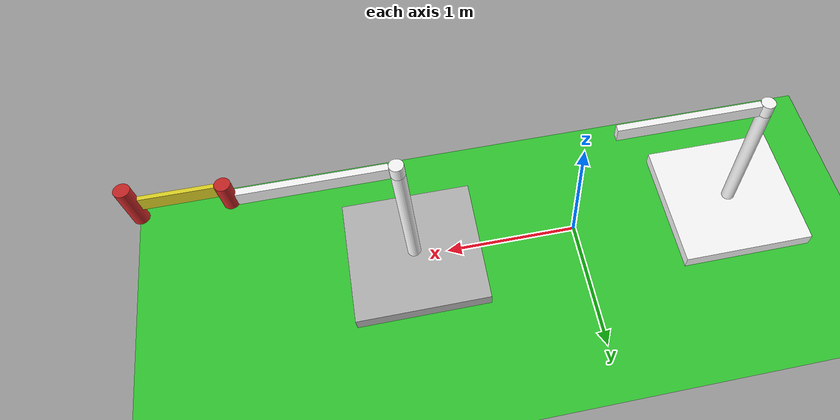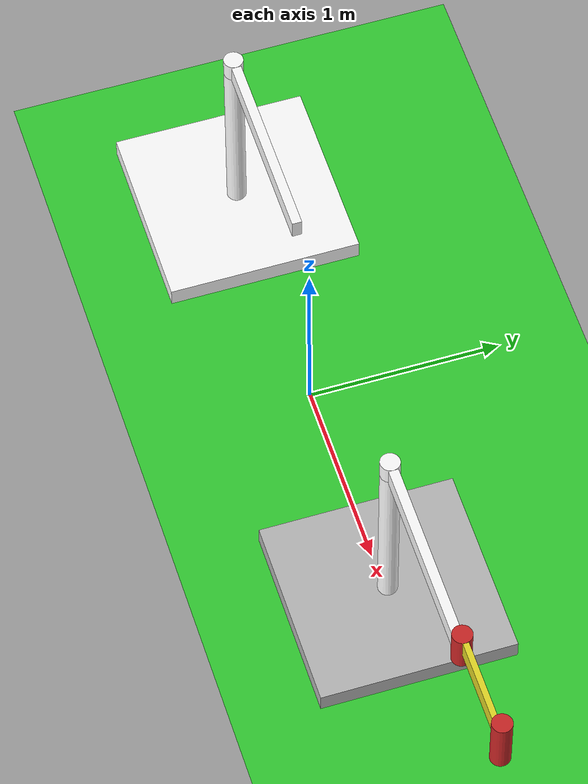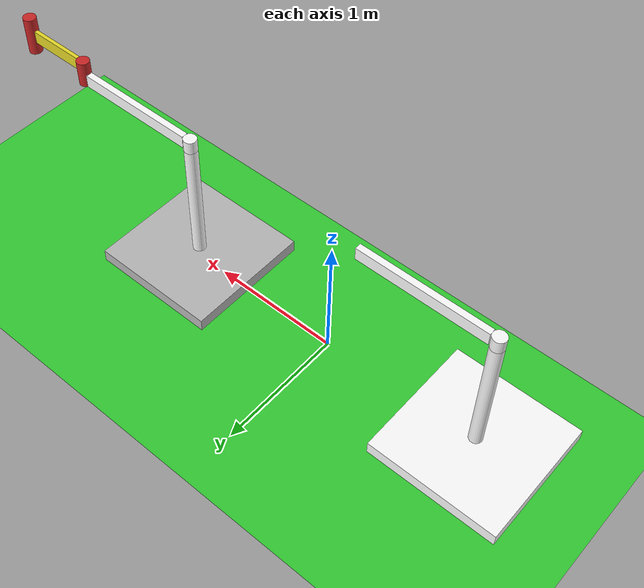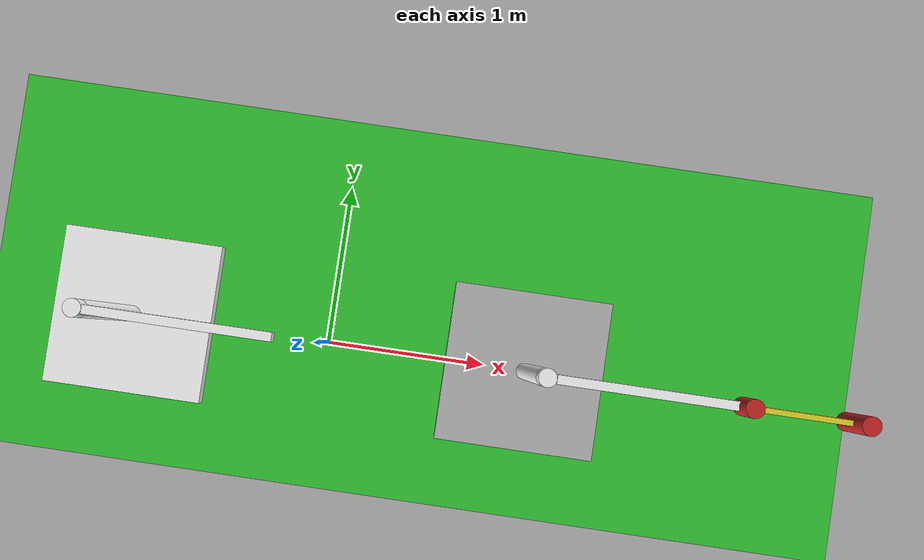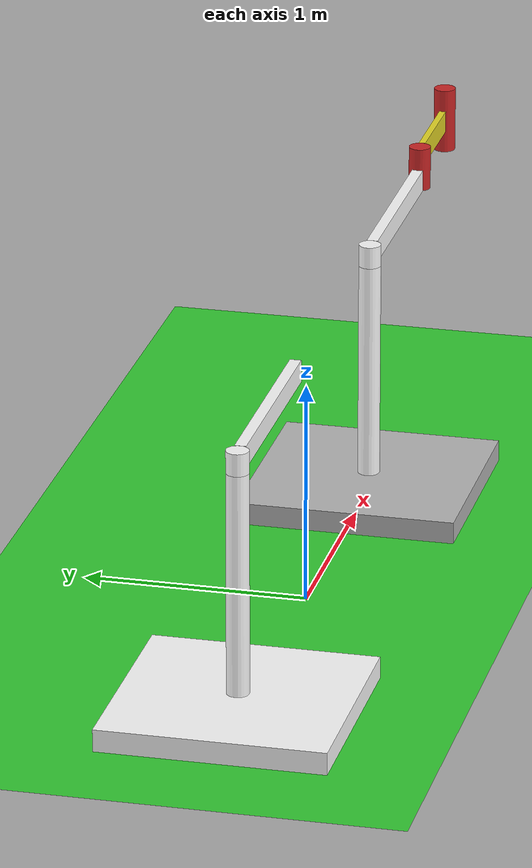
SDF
<?xml version="1.0"?>
<sdf version="1.5">
  <world name="dxsim">
    <physics name='1ms' type='unused'>
      <max_step_size>0.002000</max_step_size>
      <real_time_factor>1.000000</real_time_factor>
      <real_time_update_rate>500.000000</real_time_update_rate>
    </physics>

    <light type="directional" name="sun">
      <cast_shadows>true</cast_shadows>
      <pose>0 0 10 0 0 0</pose>
      <diffuse>0.8 0.8 0.8 1</diffuse>
      <specular>0.2 0.2 0.2 1</specular>
      <attenuation>
        <range>1000</range>
        <constant>0.9</constant>
        <linear>0.01</linear>
        <quadratic>0.001</quadratic>
      </attenuation>
      <direction>-0.5 0.1 -0.9</direction>
    </light>

    <model name="ground_plane">
      <static>true</static>
      <link name="link">
        <collision name="collision">
          <geometry>
            <plane>
              <normal>0 0 1.0</normal>
              <size>100 100</size>
            </plane>
          </geometry>
        </collision>
        <visual name="visual">
          <geometry>
            <plane>
              <normal>0 0 1.0</normal>
              <size>100 100</size>
            </plane>
          </geometry>
          <material>
            <ambient>0.2 0.8 0.2 1</ambient>
            <diffuse>0.2 0.8 0.2 1</diffuse>
            <specular>0.2 0.8 0.2 1</specular>
          </material>
        </visual>
      </link>
    </model>

    <include>
      <uri>model://dxsim-one</uri>
      <name>dxsim-one</name>
      <pose>-1.25 0 0 0 0 0</pose>
    </include>

    <include>
      <uri>model://dxsim-two</uri>
      <name>dxsim-two</name>
      <pose>1.25 0 0 0 0 0</pose>
    </include>
  </world>
</sdf>

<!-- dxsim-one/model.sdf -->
<sdf version="1.5">
  <model name="dxsim-one">
    <link name="arm_base">
      <inertial>
        <pose>0 0 0.00099 0 0 0</pose>
        <inertia>
          <ixx>1.11</ixx>
          <ixy>0</ixy>
          <ixz>0</ixz>
          <iyy>100.11</iyy>
          <iyz>0</iyz>
          <izz>1.01</izz>
        </inertia>
        <mass>101.0</mass>
      </inertial>
      <collision name="arm_base_geom">
        <pose>0 0 0.05 0 0 0</pose>
        <geometry>
          <box>
            <size>1.0 1.0 0.1</size>
          </box>
        </geometry>
      </collision>
      <visual name="arm_base_geom_visual">
        <pose>0 0 0.05 0 0 0</pose>
        <geometry>
          <box>
            <size>1.0 1.0 0.1</size>
          </box>
        </geometry>
        <material>
          <ambient>0.2 0.2 0.8 1</ambient>
          <diffuse>1.0 1.0 1.0 1</diffuse>
        </material>
      </visual>
      <collision name="arm_base_geom_arm_trunk">
        <pose>0 0 0.6 0 0 0</pose>
        <geometry>
          <cylinder>
            <radius>0.05</radius>
            <length>1.0</length>
          </cylinder>
        </geometry>
      </collision>
      <visual name="arm_base_geom_arm_trunk_visual">
        <pose>0 0 0.6 0 0 0</pose>
        <geometry>
          <cylinder>
            <radius>0.05</radius>
            <length>1.0</length>
          </cylinder>
        </geometry>
        <material>
          <ambient>0.8 0.2 0.2 1</ambient>
          <diffuse>1.0 1.0 1.0 1</diffuse>
        </material>
      </visual>
    </link>
    <link name="arm_shoulder_pan">
      <pose>0 0 1.1 0 0 0</pose>
      <inertial>
        <pose>0.045455 0 0 0 0 0</pose>
        <inertia>
          <ixx>0.011</ixx>
          <ixy>0</ixy>
          <ixz>0</ixz>
          <iyy>0.0225</iyy>
          <iyz>0</iyz>
          <izz>0.0135</izz>
        </inertia>
        <mass>1.1</mass>
      </inertial>
      <collision name="arm_shoulder_pan_geom">
        <pose>0 0 0.05 0 0 0</pose>
        <geometry>
          <cylinder>
            <radius>0.05</radius>
            <length>0.1</length>
          </cylinder>
        </geometry>
      </collision>
      <visual name="arm_shoulder_pan_geom_visual">
        <pose>0 0 0.05 0 0 0</pose>
        <geometry>
          <cylinder>
            <radius>0.05</radius>
            <length>0.1</length>
          </cylinder>
        </geometry>
        <material>
          <ambient>0.8 0.8 0.2 1</ambient>
          <diffuse>1.0 1.0 1.0 1</diffuse>
        </material>
      </visual>
      <collision name="arm_shoulder_pan_geom_arm_shoulder">
        <pose>0.55 0 0.05 0 0 0</pose>
        <geometry>
          <box>
            <size>1.0 0.05 0.1</size>
          </box>
        </geometry>
      </collision>
      <visual name="arm_shoulder_pan_geom_arm_shoulder_visual">
        <pose>0.55 0 0.05 0 0 0</pose>
        <geometry>
          <box>
            <size>1.0 0.05 0.1</size>
          </box>
        </geometry>
        <material>
          <ambient>0.8 0.8 0.2 1</ambient>
          <diffuse>1.0 1.0 1.0 1</diffuse>
        </material>
      </visual>
    </link>

    <joint name="arm_shoulder_pan_joint" type="revolute">
      <parent>arm_base</parent>
      <child>arm_shoulder_pan</child>
      <axis>
        <dynamics>
          <damping>1.000000</damping>
          <friction>0.000000</friction>
        </dynamics>
        <xyz>0 0 1</xyz>
        <use_parent_model_frame>true</use_parent_model_frame>
      </axis>
    </joint>

    <joint name="arm_base_joint" type="fixed">
      <parent>world</parent>
      <child>arm_base</child>
    </joint>

    <plugin name="dxsim" filename="dxsim-gazebo.so">
      <pty>/tmp/pty-dxsim-one</pty>
      <period>1e-3</period>
      <motors>
        <motor>
          <joint spin="ccw">arm_shoulder_pan_joint</joint>
          <eeprom>/tmp/dxsim-one-id1</eeprom>
          <model>MX64T</model>
          <p0>0.0</p0>
          <v0>0.0</v0>
          <id>1</id>
          <noise>0</noise>
          <debug>0</debug>
        </motor>
      </motors>
    </plugin>
  </model>
</sdf>

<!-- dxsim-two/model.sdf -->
<sdf version="1.5">
  <model name="dxsim-two">
    <link name="arm_base">
      <inertial>
        <pose>0 0 0.00099 0 0 0</pose>
        <inertia>
          <ixx>1.11</ixx>
          <ixy>0</ixy>
          <ixz>0</ixz>
          <iyy>100.11</iyy>
          <iyz>0</iyz>
          <izz>1.01</izz>
        </inertia>
        <mass>101.0</mass>
      </inertial>
      <collision name="arm_base_geom">
        <pose>0 0 0.05 0 0 0</pose>
        <geometry>
          <box>
            <size>1.0 1.0 0.1</size>
          </box>
        </geometry>
      </collision>
      <visual name="arm_base_geom_visual">
        <pose>0 0 0.05 0 0 0</pose>
        <geometry>
          <box>
            <size>1.0 1.0 0.1</size>
          </box>
        </geometry>
        <material>
          <script>
            <ambient>0.2 0.2 0.8 1</ambient>
            <diffuse>1.0 1.0 1.0 1</diffuse>
          </script>
        </material>
      </visual>
      <collision name="arm_base_geom_arm_trunk">
        <pose>0 0 0.6 0 0 0</pose>
        <geometry>
          <cylinder>
            <radius>0.05</radius>
            <length>1.0</length>
          </cylinder>
        </geometry>
      </collision>
      <visual name="arm_base_geom_arm_trunk_visual">
        <pose>0 0 0.6 0 0 0</pose>
        <geometry>
          <cylinder>
            <radius>0.05</radius>
            <length>1.0</length>
          </cylinder>
        </geometry>
        <material>
          <ambient>0.8 0.2 0.2 1</ambient>
          <diffuse>1.0 1.0 1.0 1</diffuse>
        </material>
      </visual>
    </link>
    <link name="arm_shoulder_pan">
      <pose>0 0 1.1 0 0 0</pose>
      <inertial>
        <pose>0.045455 0 0 0 0 0</pose>
        <inertia>
          <ixx>0.011</ixx>
          <ixy>0</ixy>
          <ixz>0</ixz>
          <iyy>0.0225</iyy>
          <iyz>0</iyz>
          <izz>0.0135</izz>
        </inertia>
        <mass>1.1</mass>
      </inertial>
      <collision name="arm_shoulder_pan_geom">
        <pose>0 0 0.05 0 0 0</pose>
        <geometry>
          <cylinder>
            <radius>0.05</radius>
            <length>0.1</length>
          </cylinder>
        </geometry>
      </collision>
      <visual name="arm_shoulder_pan_geom_visual">
        <pose>0 0 0.05 0 0 0</pose>
        <geometry>
          <cylinder>
            <radius>0.05</radius>
            <length>0.1</length>
          </cylinder>
        </geometry>
        <material>
          <ambient>0.8 0.8 0.2 1</ambient>
          <diffuse>1.0 1.0 1.0 1</diffuse>
        </material>
      </visual>
      <collision name="arm_shoulder_pan_geom_arm_shoulder">
        <pose>0.55 0 0.05 0 0 0</pose>
        <geometry>
          <box>
            <size>1.0 0.05 0.1</size>
          </box>
        </geometry>
      </collision>
      <visual name="arm_shoulder_pan_geom_arm_shoulder_visual">
        <pose>0.55 0 0.05 0 0 0</pose>
        <geometry>
          <box>
            <size>1.0 0.05 0.1</size>
          </box>
        </geometry>
        <material>
          <ambient>0.8 0.8 0.2 1</ambient>
          <diffuse>1.0 1.0 1.0 1</diffuse>
        </material>
      </visual>
    </link>
    <link name="arm_elbow_pan">
      <pose>1.05 0 1.1 0 0 0</pose>
      <inertial>
        <pose>0.0875 0 0.083333 0 0 0</pose>
        <inertia>
          <ixx>0.031</ixx>
          <ixy>0</ixy>
          <ixz>0.005</ixz>
          <iyy>0.07275</iyy>
          <iyz>0</iyz>
          <izz>0.04475</izz>
        </inertia>
        <mass>1.2</mass>
      </inertial>
      <collision name="arm_elbow_pan_geom">
        <pose>0 0 0.1 0 0 0</pose>
        <geometry>
          <cylinder>
            <radius>0.05</radius>
            <length>0.2</length>
          </cylinder>
        </geometry>
      </collision>
      <visual name="arm_elbow_pan_geom_visual">
        <pose>0 0 0.1 0 0 0</pose>
        <geometry>
          <cylinder>
            <radius>0.05</radius>
            <length>0.2</length>
          </cylinder>
        </geometry>
        <material>
          <script>
            <uri>file://media/materials/scripts/gazebo.material</uri>
            <name>Gazebo/Red</name>
          </script>
        </material>
      </visual>
      <collision name="arm_elbow_pan_geom_arm_elbow">
        <pose>0.3 0 0.15 0 0 0</pose>
        <geometry>
          <box>
            <size>0.5 0.03 0.1</size>
          </box>
        </geometry>
      </collision>
      <visual name="arm_elbow_pan_geom_arm_elbow_visual">
        <pose>0.3 0 0.15 0 0 0</pose>
        <geometry>
          <box>
            <size>0.5 0.03 0.1</size>
          </box>
        </geometry>
        <material>
          <script>
            <uri>file://media/materials/scripts/gazebo.material</uri>
            <name>Gazebo/Yellow</name>
          </script>
        </material>
      </visual>
      <collision name="arm_elbow_pan_geom_arm_wrist">
        <pose>0.55 0 0.15 0 0 0</pose>
        <geometry>
          <cylinder>
            <radius>0.05</radius>
            <length>0.3</length>
          </cylinder>
        </geometry>
      </collision>
      <visual name="arm_elbow_pan_geom_arm_wrist_visual">
        <pose>0.55 0 0.15 0 0 0</pose>
        <geometry>
          <cylinder>
            <radius>0.05</radius>
            <length>0.3</length>
          </cylinder>
        </geometry>
        <material>
          <script>
            <uri>file://media/materials/scripts/gazebo.material</uri>
            <name>Gazebo/Red</name>
          </script>
        </material>
      </visual>
    </link>
    <joint name="arm_shoulder_pan_joint" type="revolute">
      <parent>arm_base</parent>
      <child>arm_shoulder_pan</child>
      <axis>
        <dynamics>
          <damping>1.000000</damping>
          <friction>0.000000</friction>
        </dynamics>
        <xyz>0 0 1</xyz>
        <use_parent_model_frame>true</use_parent_model_frame>
      </axis>
    </joint>
    <joint name="arm_elbow_pan_joint" type="revolute">
      <parent>arm_shoulder_pan</parent>
      <child>arm_elbow_pan</child>
      <axis>
        <dynamics>
          <damping>1.000000</damping>
          <friction>0.000000</friction>
        </dynamics>
        <xyz>0 0 1</xyz>
        <use_parent_model_frame>true</use_parent_model_frame>
      </axis>
    </joint>

    <joint name="arm_base_joint" type="fixed">
      <parent>world</parent>
      <child>arm_base</child>
    </joint>

    <plugin name="dxsim" filename="dxsim-gazebo.so">
      <pty>/tmp/pty-dxsim-two</pty>
      <motors>
        <motor>
          <joint spin="ccw">arm_shoulder_pan_joint</joint>
          <model>MX64T</model>
          <eeprom>/tmp/dxsim-two-id2</eeprom>
          <id>2</id>
          <noise>0</noise>
          <debug>0</debug>
        </motor>
        <motor>
          <joint spin="ccw">arm_elbow_pan_joint</joint>
          <eeprom>/tmp/dxsim-two-id3</eeprom>
          <id>3</id>
          <noise>0</noise>
          <debug>0</debug>
        </motor>
      </motors>
    </plugin>
  </model>
</sdf>
